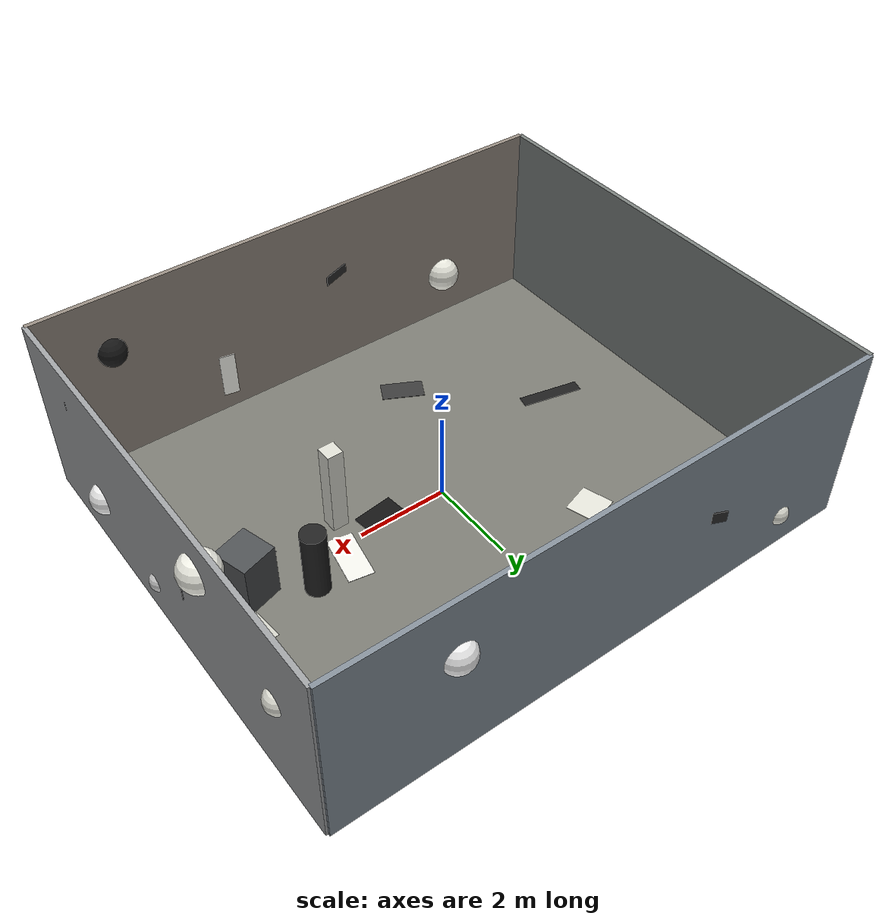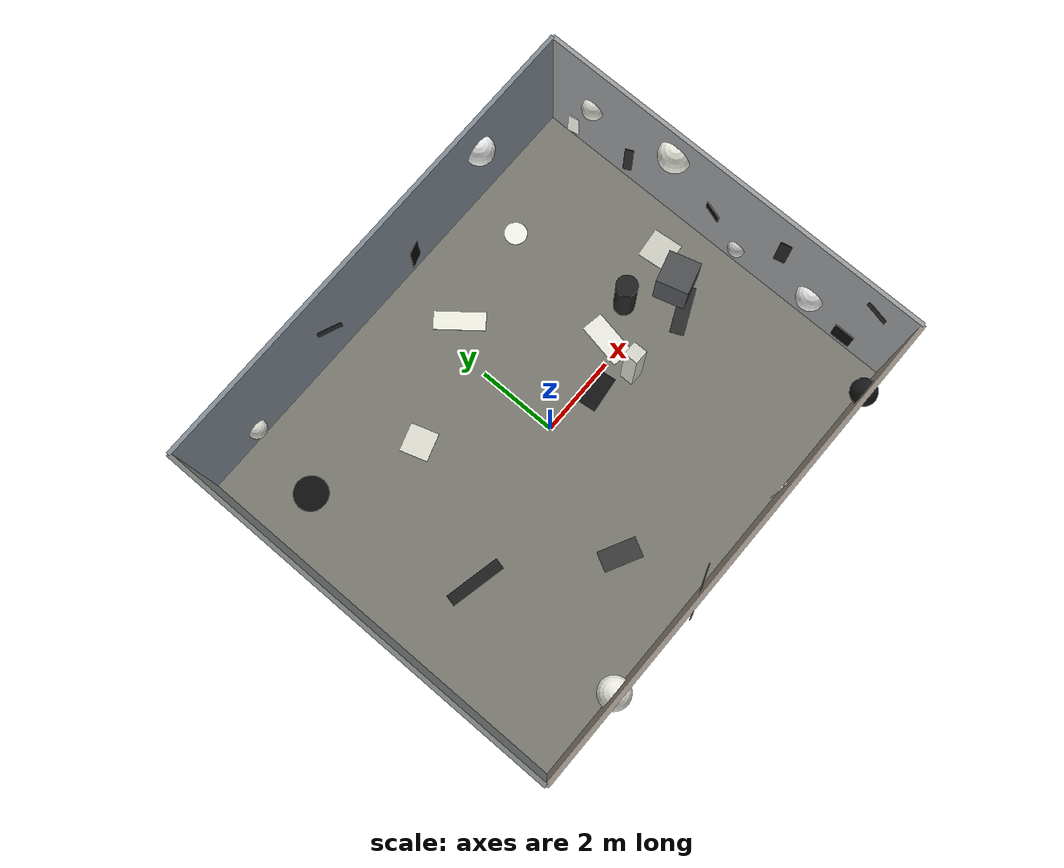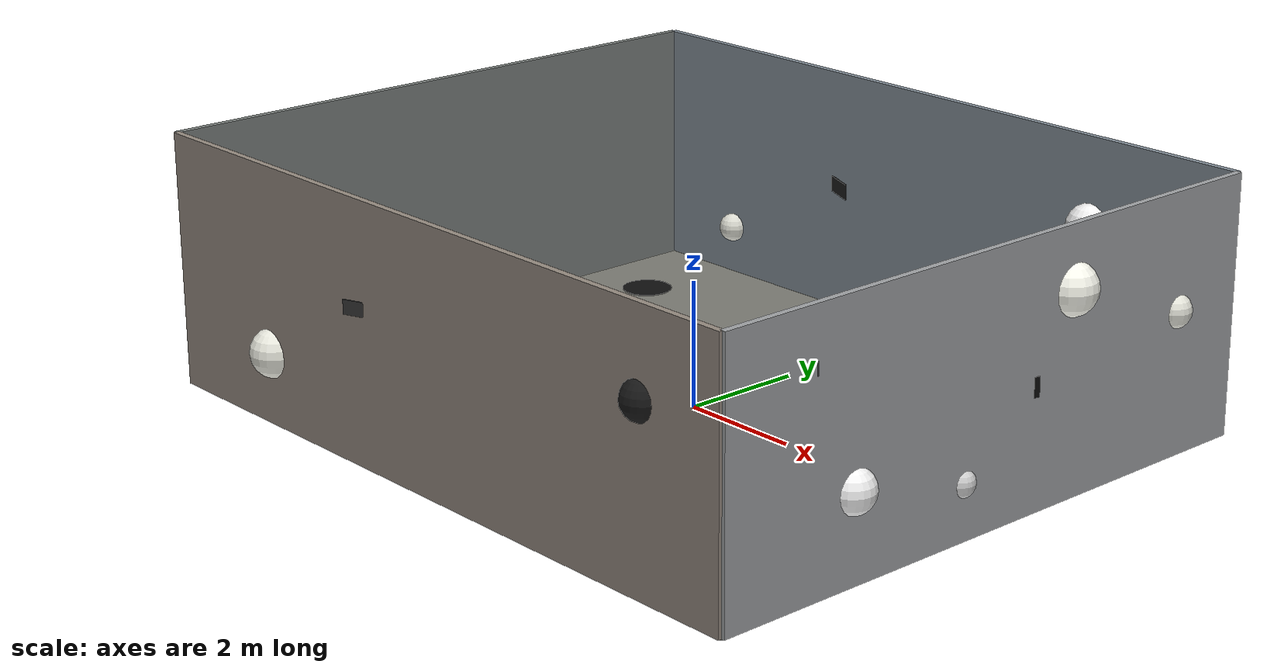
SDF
<sdf version="1.9">
 <world name="smartdrone_hover">
  <physics name="smartdrone_4ms" type="ode">
   <max_step_size>0.004</max_step_size>
   <real_time_factor>1.0</real_time_factor>
   <real_time_update_rate>250</real_time_update_rate>
  </physics>
  <plugin filename="gz-sim-physics-system" name="gz::sim::systems::Physics"/>
  <plugin filename="gz-sim-user-commands-system" name="gz::sim::systems::UserCommands"/>
  <plugin filename="gz-sim-scene-broadcaster-system" name="gz::sim::systems::SceneBroadcaster"/>
  <plugin filename="gz-sim-contact-system" name="gz::sim::systems::Contact"/>
  <plugin filename="gz-sim-imu-system" name="gz::sim::systems::Imu"/>
  <plugin filename="gz-sim-air-pressure-system" name="gz::sim::systems::AirPressure"/>
  <plugin filename="gz-sim-magnetometer-system" name="gz::sim::systems::Magnetometer"/>
  <plugin filename="gz-sim-navsat-system" name="gz::sim::systems::NavSat"/>
  <plugin filename="gz-sim-sensors-system" name="gz::sim::systems::Sensors">
   <render_engine>ogre2</render_engine>
  </plugin>
  <plugin filename="gz-sim-apply-link-wrench-system" name="gz::sim::systems::ApplyLinkWrench">
   <verbose>false</verbose>
  </plugin>
  <gravity>0 0 -9.80665</gravity>
  <magnetic_field>6e-06 2.3e-05 -4.2e-05</magnetic_field>
  <atmosphere type="adiabatic"/>
  <spherical_coordinates>
   <surface_model>EARTH_WGS84</surface_model>
   <world_frame_orientation>ENU</world_frame_orientation>
   <latitude_deg>47.397971057728974</latitude_deg>
   <longitude_deg>8.546163739800146</longitude_deg>
   <elevation>0</elevation>
  </spherical_coordinates>
  <scene>
   <grid>false</grid>
   <ambient>0.32 0.32 0.32 1</ambient>
   <background>0.18 0.20 0.22 1</background>
   <shadows>true</shadows>
  </scene>
  <light name="ceiling_key" type="spot">
   <pose>0 0 3.8 0 0 0</pose>
   <intensity>1.2</intensity>
   <direction>0.25 0 -1</direction>
   <diffuse>0.95 0.95 0.92 1</diffuse>
   <specular>0.2 0.2 0.2 1</specular>
   <spot><inner_angle>0.4</inner_angle><outer_angle>1.5</outer_angle><falloff>0.2</falloff></spot>
   <attenuation>
    <range>20</range>
    <constant>0.25</constant>
    <linear>0.03</linear>
    <quadratic>0.001</quadratic>
   </attenuation>
  </light>
  <light name="front_fill" type="point">
   <pose>4 -2 2.8 0 0 0</pose>
   <cast_shadows>false</cast_shadows>
   <intensity>0.8</intensity>
   <diffuse>0.70 0.78 0.95 1</diffuse>
   <specular>0.15 0.15 0.18 1</specular>
   <attenuation>
    <range>14</range>
    <constant>0.35</constant>
    <linear>0.04</linear>
    <quadratic>0.002</quadratic>
   </attenuation>
  </light>
  <model name="smartdrone_textured_arena">
   <static>true</static>
   <link name="arena">
    <collision name="floor_collision">
     <geometry><box><size>12 10 0.1</size></box></geometry>
     <pose>0 0 -0.05 0 0 0</pose>
     <surface><friction><ode><mu>1.0</mu><mu2>1.0</mu2></ode></friction></surface>
    </collision>
    <visual name="floor_base">
     <geometry><box><size>12 10 0.02</size></box></geometry>
     <pose>0 0 -0.01 0 0 0</pose>
     <material>
      <ambient>0.42 0.42 0.40 1</ambient>
      <diffuse>0.48 0.48 0.45 1</diffuse>
      <specular>0.04 0.04 0.04 1</specular>
      <pbr>
       <metal>
        <albedo_map>model://smartdrone_indoor_assets/materials/textures/floor_features.png</albedo_map>
        <metalness>0.0</metalness>
        <roughness>0.9</roughness>
       </metal>
      </pbr>
     </material>
    </visual>
    <visual name="floor_patch_01">
     <pose>1.4 -0.25 0.006 0 0 0.12</pose>
     <geometry><box><size>0.9 0.45 0.012</size></box></geometry>
     <material><ambient>0.06 0.06 0.06 1</ambient><diffuse>0.08 0.08 0.08 1</diffuse></material>
    </visual>
    <visual name="floor_patch_02">
     <pose>2.5 0.35 0.006 0 0 -0.18</pose>
     <geometry><box><size>0.55 1.15 0.012</size></box></geometry>
     <material><ambient>0.88 0.88 0.86 1</ambient><diffuse>0.94 0.94 0.91 1</diffuse></material>
    </visual>
    <visual name="floor_patch_03">
     <pose>4.2 -0.55 0.006 0 0 0.43</pose>
     <geometry><box><size>1.2 0.35 0.012</size></box></geometry>
     <material><ambient>0.15 0.15 0.15 1</ambient><diffuse>0.18 0.18 0.18 1</diffuse></material>
    </visual>
    <visual name="floor_patch_04">
     <pose>-2.2 2.1 0.006 0 0 0.31</pose>
     <geometry><box><size>0.7 0.7 0.012</size></box></geometry>
     <material><ambient>0.80 0.80 0.78 1</ambient><diffuse>0.88 0.88 0.84 1</diffuse></material>
    </visual>
    <visual name="floor_patch_05">
     <pose>-3.8 -1.0 0.006 0 0 -0.22</pose>
     <geometry><box><size>1.4 0.28 0.012</size></box></geometry>
     <material><ambient>0.10 0.10 0.10 1</ambient><diffuse>0.12 0.12 0.12 1</diffuse></material>
    </visual>
    <visual name="floor_patch_06">
     <pose>0.6 3.3 0.006 0 0 0.67</pose>
     <geometry><box><size>0.45 1.25 0.012</size></box></geometry>
     <material><ambient>0.91 0.91 0.88 1</ambient><diffuse>0.96 0.96 0.92 1</diffuse></material>
    </visual>
    <visual name="floor_patch_07">
     <pose>-1.2 -3.1 0.006 0 0 -0.48</pose>
     <geometry><box><size>0.95 0.50 0.012</size></box></geometry>
     <material><ambient>0.20 0.20 0.20 1</ambient><diffuse>0.23 0.23 0.23 1</diffuse></material>
    </visual>
    <visual name="floor_patch_08">
     <pose>5.0 0.8 0.006 0 0 0.10</pose>
     <geometry><box><size>0.75 0.75 0.012</size></box></geometry>
     <material><ambient>0.74 0.74 0.72 1</ambient><diffuse>0.82 0.82 0.78 1</diffuse></material>
    </visual>
    <visual name="floor_patch_09">
     <pose>-4.7 3.2 0.006 0 0 0.54</pose>
     <geometry><cylinder><radius>0.42</radius><length>0.012</length></cylinder></geometry>
     <material><ambient>0.04 0.04 0.04 1</ambient><diffuse>0.06 0.06 0.06 1</diffuse></material>
    </visual>
    <visual name="floor_patch_10">
     <pose>3.1 3.7 0.006 0 0 0</pose>
     <geometry><cylinder><radius>0.28</radius><length>0.012</length></cylinder></geometry>
     <material><ambient>0.92 0.92 0.90 1</ambient><diffuse>0.98 0.98 0.95 1</diffuse></material>
    </visual>
    <collision name="front_wall_collision">
     <pose>6 0 2 0 0 0</pose>
     <geometry><box><size>0.1 10 4</size></box></geometry>
    </collision>
    <visual name="front_wall">
     <pose>6 0 2 0 0 0</pose>
     <geometry><box><size>0.1 10 4</size></box></geometry>
     <material>
      <ambient>0.55 0.56 0.57 1</ambient>
      <diffuse>0.62 0.63 0.64 1</diffuse>
      <pbr>
       <metal>
        <albedo_map>model://smartdrone_indoor_assets/materials/textures/wall_features.png</albedo_map>
        <metalness>0.0</metalness>
        <roughness>0.85</roughness>
       </metal>
      </pbr>
     </material>
    </visual>
    <visual name="front_mark_01">
     <pose>5.944 -3.8 0.55 0 0 0</pose>
     <geometry><box><size>0.018 0.52 0.72</size></box></geometry>
     <material><ambient>0.03 0.03 0.03 1</ambient><diffuse>0.04 0.04 0.04 1</diffuse></material>
    </visual>
    <visual name="front_mark_02">
     <pose>5.942 -2.7 1.30 0 0 0</pose>
     <geometry><sphere><radius>0.34</radius></sphere></geometry>
     <material><ambient>0.88 0.88 0.88 1</ambient><diffuse>0.96 0.96 0.96 1</diffuse></material>
    </visual>
    <visual name="front_mark_03">
     <pose>5.943 -1.75 2.45 0 0 0.25</pose>
     <geometry><box><size>0.02 0.42 1.05</size></box></geometry>
     <material><ambient>0.10 0.10 0.10 1</ambient><diffuse>0.13 0.13 0.13 1</diffuse></material>
    </visual>
    <visual name="front_mark_04">
     <pose>5.941 -0.65 0.82 0 0 0</pose>
     <geometry><sphere><radius>0.22</radius></sphere></geometry>
     <material><ambient>0.72 0.72 0.72 1</ambient><diffuse>0.82 0.82 0.82 1</diffuse></material>
    </visual>
    <visual name="front_mark_05">
     <pose>5.942 0.35 1.85 0 0 -0.31</pose>
     <geometry><box><size>0.02 0.82 0.30</size></box></geometry>
     <material><ambient>0.02 0.02 0.02 1</ambient><diffuse>0.04 0.04 0.04 1</diffuse></material>
    </visual>
    <visual name="front_mark_06">
     <pose>5.941 1.45 3.05 0 0 0</pose>
     <geometry><sphere><radius>0.40</radius></sphere></geometry>
     <material><ambient>0.90 0.90 0.88 1</ambient><diffuse>0.98 0.98 0.94 1</diffuse></material>
    </visual>
    <visual name="front_mark_07">
     <pose>5.943 2.55 1.05 0 0 0.45</pose>
     <geometry><box><size>0.02 0.35 1.15</size></box></geometry>
     <material><ambient>0.14 0.14 0.14 1</ambient><diffuse>0.17 0.17 0.17 1</diffuse></material>
    </visual>
    <visual name="front_mark_08">
     <pose>5.942 3.75 2.20 0 0 0</pose>
     <geometry><sphere><radius>0.27</radius></sphere></geometry>
     <material><ambient>0.82 0.82 0.80 1</ambient><diffuse>0.90 0.90 0.86 1</diffuse></material>
    </visual>
    <visual name="front_mark_09">
     <pose>5.942 -3.9 3.15 0 0 -0.22</pose>
     <geometry><box><size>0.02 0.95 0.20</size></box></geometry>
     <material><ambient>0.18 0.18 0.18 1</ambient><diffuse>0.21 0.21 0.21 1</diffuse></material>
    </visual>
    <visual name="front_mark_10">
     <pose>5.941 4.25 0.55 0 0 0.18</pose>
     <geometry><box><size>0.02 0.38 0.82</size></box></geometry>
     <material><ambient>0.94 0.94 0.90 1</ambient><diffuse>0.99 0.99 0.95 1</diffuse></material>
    </visual>
    <collision name="left_wall_collision">
     <pose>0 5 2 0 0 0</pose>
     <geometry><box><size>12 0.1 4</size></box></geometry>
    </collision>
    <visual name="left_wall">
     <pose>0 5 2 0 0 0</pose>
     <geometry><box><size>12 0.1 4</size></box></geometry>
     <material><ambient>0.46 0.49 0.52 1</ambient><diffuse>0.52 0.56 0.60 1</diffuse></material>
    </visual>
    <visual name="left_mark_01">
     <pose>1.1 4.944 1.0 0 0 0.3</pose>
     <geometry><box><size>0.65 0.018 0.9</size></box></geometry>
     <material><ambient>0.04 0.04 0.04 1</ambient><diffuse>0.06 0.06 0.06 1</diffuse></material>
    </visual>
    <visual name="left_mark_02">
     <pose>3.4 4.942 2.6 0 0 0</pose>
     <geometry><sphere><radius>0.36</radius></sphere></geometry>
     <material><ambient>0.88 0.88 0.88 1</ambient><diffuse>0.95 0.95 0.95 1</diffuse></material>
    </visual>
    <visual name="left_mark_03">
     <pose>-2.0 4.943 2.1 0 0 -0.4</pose>
     <geometry><box><size>1.1 0.02 0.26</size></box></geometry>
     <material><ambient>0.12 0.12 0.12 1</ambient><diffuse>0.15 0.15 0.15 1</diffuse></material>
    </visual>
    <visual name="left_mark_04">
     <pose>-4.4 4.941 0.8 0 0 0</pose>
     <geometry><sphere><radius>0.24</radius></sphere></geometry>
     <material><ambient>0.78 0.78 0.76 1</ambient><diffuse>0.86 0.86 0.82 1</diffuse></material>
    </visual>
    <collision name="right_wall_collision">
     <pose>0 -5 2 0 0 0</pose>
     <geometry><box><size>12 0.1 4</size></box></geometry>
    </collision>
    <visual name="right_wall">
     <pose>0 -5 2 0 0 0</pose>
     <geometry><box><size>12 0.1 4</size></box></geometry>
     <material><ambient>0.50 0.47 0.44 1</ambient><diffuse>0.58 0.54 0.50 1</diffuse></material>
    </visual>
    <visual name="right_mark_01">
     <pose>2.2 -4.944 0.9 0 0 -0.2</pose>
     <geometry><box><size>0.55 0.018 1.05</size></box></geometry>
     <material><ambient>0.92 0.92 0.90 1</ambient><diffuse>0.98 0.98 0.95 1</diffuse></material>
    </visual>
    <visual name="right_mark_02">
     <pose>4.5 -4.942 2.7 0 0 0</pose>
     <geometry><sphere><radius>0.31</radius></sphere></geometry>
     <material><ambient>0.07 0.07 0.07 1</ambient><diffuse>0.09 0.09 0.09 1</diffuse></material>
    </visual>
    <visual name="right_mark_03">
     <pose>-1.0 -4.943 2.4 0 0 0.35</pose>
     <geometry><box><size>1.25 0.02 0.22</size></box></geometry>
     <material><ambient>0.16 0.16 0.16 1</ambient><diffuse>0.19 0.19 0.19 1</diffuse></material>
    </visual>
    <visual name="right_mark_04">
     <pose>-3.7 -4.941 1.1 0 0 0</pose>
     <geometry><sphere><radius>0.39</radius></sphere></geometry>
     <material><ambient>0.84 0.84 0.81 1</ambient><diffuse>0.91 0.91 0.87 1</diffuse></material>
    </visual>
    <collision name="back_wall_collision">
     <pose>-6 0 2 0 0 0</pose>
     <geometry><box><size>0.1 10 4</size></box></geometry>
    </collision>
    <visual name="back_wall">
     <pose>-6 0 2 0 0 0</pose>
     <geometry><box><size>0.1 10 4</size></box></geometry>
     <material><ambient>0.42 0.44 0.43 1</ambient><diffuse>0.48 0.50 0.49 1</diffuse></material>
    </visual>
    <collision name="pillar_1_collision">
     <pose>2.2 -0.6 1.0 0 0 0</pose>
     <geometry><box><size>0.35 0.35 2.0</size></box></geometry>
    </collision>
    <visual name="pillar_1">
     <pose>2.2 -0.6 1.0 0 0 0</pose>
     <geometry><box><size>0.35 0.35 2.0</size></box></geometry>
     <material>
      <ambient>0.78 0.78 0.76 1</ambient>
      <diffuse>0.86 0.86 0.82 1</diffuse>
      <pbr>
       <metal>
        <albedo_map>model://smartdrone_indoor_assets/materials/textures/wall_features.png</albedo_map>
        <metalness>0.0</metalness>
        <roughness>0.9</roughness>
       </metal>
      </pbr>
     </material>
    </visual>
    <collision name="pillar_2_collision">
     <pose>3.4 0.6 0.75 0 0 0</pose>
     <geometry><cylinder><radius>0.26</radius><length>1.5</length></cylinder></geometry>
    </collision>
    <visual name="pillar_2">
     <pose>3.4 0.6 0.75 0 0 0</pose>
     <geometry><cylinder><radius>0.26</radius><length>1.5</length></cylinder></geometry>
     <material><ambient>0.10 0.10 0.10 1</ambient><diffuse>0.13 0.13 0.13 1</diffuse></material>
    </visual>
    <collision name="crate_collision">
     <pose>4.5 -0.05 0.6 0 0 0.28</pose>
     <geometry><box><size>0.8 0.8 1.2</size></box></geometry>
    </collision>
    <visual name="crate">
     <pose>4.5 -0.05 0.6 0 0 0.28</pose>
     <geometry><box><size>0.8 0.8 1.2</size></box></geometry>
     <material>
      <ambient>0.26 0.27 0.28 1</ambient>
      <diffuse>0.31 0.32 0.33 1</diffuse>
      <pbr>
       <metal>
        <albedo_map>model://smartdrone_indoor_assets/materials/textures/floor_features.png</albedo_map>
        <metalness>0.0</metalness>
        <roughness>0.95</roughness>
       </metal>
      </pbr>
     </material>
    </visual>
   </link>
  </model>
 </world>
</sdf>
